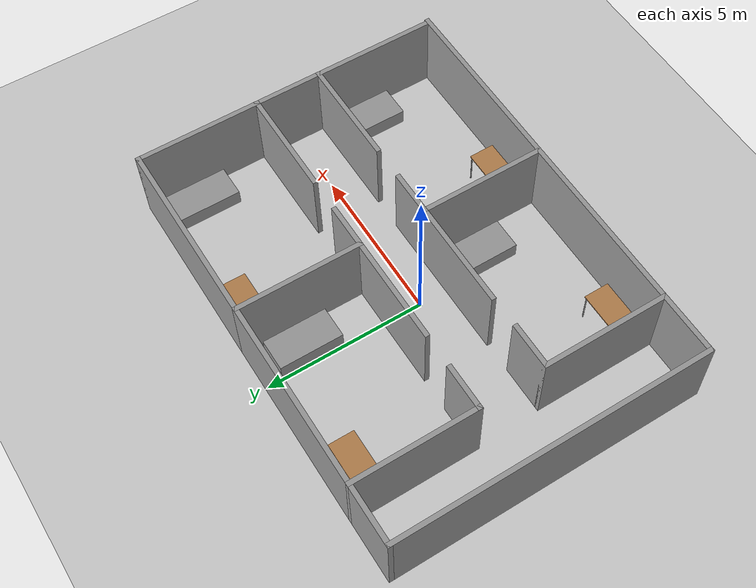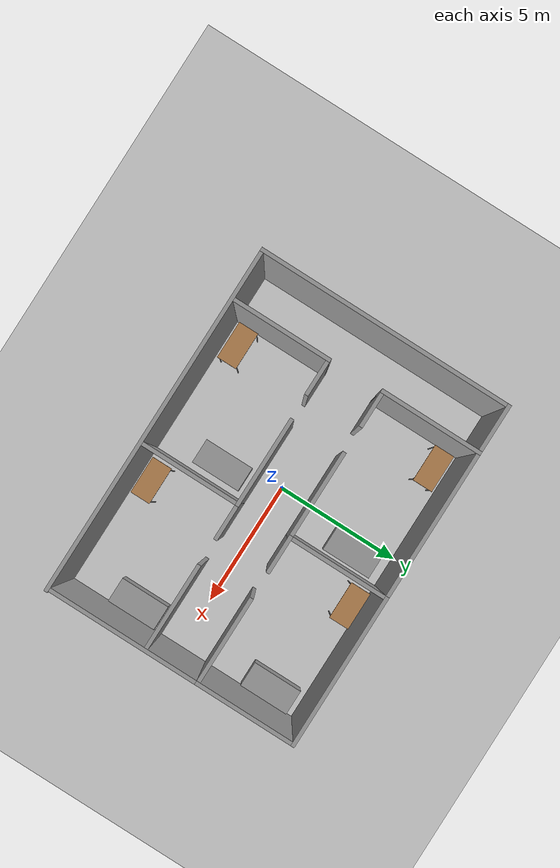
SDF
<sdf version="1.7">
 <world name="default">
  <light name="sun" type="directional">
   <pose>0 0 10 0 -0 0</pose>
   <diffuse>0.8 0.8 0.8 1</diffuse>
   <specular>0.2 0.2 0.2 1</specular>
   <attenuation>
    <range>1000</range>
    <constant>0.9</constant>
    <linear>0.01</linear>
    <quadratic>0.001</quadratic>
   </attenuation>
   <direction>-0.5 0.1 -0.9</direction>
   <spot><inner_angle>0</inner_angle><outer_angle>0</outer_angle><falloff>0</falloff></spot>
  </light>
  <model name="ground_plane">
   <static>1</static>
   <link name="link">
    <collision name="collision">
     <geometry><plane><normal>0 0 1</normal><size>100 100</size></plane></geometry>
     <surface>
      <contact><collide_bitmask>65535</collide_bitmask></contact>
      <friction><ode><mu>100</mu><mu2>50</mu2></ode></friction>
     </surface>
    </collision>
    <visual name="visual">
     <cast_shadows>0</cast_shadows>
     <geometry><plane><normal>0 0 1</normal><size>100 100</size></plane></geometry>
     <material>
      <script><uri>file://media/materials/scripts/gazebo.material</uri><name>Gazebo/Grey</name></script>
     </material>
    </visual>
   </link>
  </model>
  <gravity>0 0 -9.8</gravity>
  <magnetic_field>6e-06 2.3e-05 -4.2e-05</magnetic_field>
  <atmosphere type="adiabatic"/>
  <physics type="ode">
   <max_step_size>0.001</max_step_size>
   <real_time_factor>1</real_time_factor>
   <real_time_update_rate>1000</real_time_update_rate>
  </physics>
  <scene><ambient>0.4 0.4 0.4 1</ambient><background>0.7 0.7 0.7 1</background><shadows>1</shadows></scene>
  <spherical_coordinates>
   <surface_model>EARTH_WGS84</surface_model>
   <latitude_deg>0</latitude_deg>
   <longitude_deg>0</longitude_deg>
   <elevation>0</elevation>
   <heading_deg>0</heading_deg>
  </spherical_coordinates>
  <model name="wall">
   <link name="Wall_0">
    <pose>-4.95 2.6525 0 0 0 -1.5708</pose>
    <visual name="Wall_0_Visual">
     <pose>0 0 1.25 0 -0 0</pose>
     <geometry><box><size>4 0.15 2.5</size></box></geometry>
     <material>
      <script><uri>file://media/materials/scripts/gazebo.material</uri><name>Gazebo/Grey</name></script>
      <ambient>1 1 1 1</ambient>
      <shader type="pixel"/>
     </material>
     <meta><layer>0</layer></meta>
    </visual>
    <collision name="Wall_0_Collision">
     <pose>0 0 1.25 0 -0 0</pose>
     <geometry><box><size>4 0.15 2.5</size></box></geometry>
     <surface>
      <friction>
       <ode><mu>1</mu><mu2>1</mu2><fdir1>0 0 0</fdir1><slip1>0</slip1><slip2>0</slip2></ode>
       <torsional>
        <coefficient>1</coefficient>
        <patch_radius>0</patch_radius>
        <surface_radius>0</surface_radius>
        <use_patch_radius>1</use_patch_radius>
        <ode><slip>0</slip></ode>
       </torsional>
      </friction>
      <bounce><restitution_coefficient>0</restitution_coefficient><threshold>1e+06</threshold></bounce>
      <contact>
       <collide_without_contact>0</collide_without_contact>
       <collide_without_contact_bitmask>1</collide_without_contact_bitmask>
       <collide_bitmask>1</collide_bitmask>
       <ode>
        <soft_cfm>0</soft_cfm>
        <soft_erp>0.2</soft_erp>
        <kp>1e+13</kp>
        <kd>1</kd>
        <max_vel>0.01</max_vel>
        <min_depth>0</min_depth>
       </ode>
       <bullet>
        <split_impulse>1</split_impulse>
        <split_impulse_penetration_threshold>-0.01</split_impulse_penetration_threshold>
        <soft_cfm>0</soft_cfm>
        <soft_erp>0.2</soft_erp>
        <kp>1e+13</kp>
        <kd>1</kd>
       </bullet>
      </contact>
     </surface>
    </collision>
   </link>
   <link name="Wall_11">
    <pose>3.825 4.5775 0 0 -0 0</pose>
    <visual name="Wall_11_Visual">
     <pose>0 0 1.25 0 -0 0</pose>
     <geometry><box><size>6 0.15 2.5</size></box></geometry>
     <material>
      <script><uri>file://media/materials/scripts/gazebo.material</uri><name>Gazebo/Grey</name></script>
      <ambient>1 1 1 1</ambient>
      <shader type="pixel"/>
     </material>
     <meta><layer>0</layer></meta>
    </visual>
    <collision name="Wall_11_Collision">
     <pose>0 0 1.25 0 -0 0</pose>
     <geometry><box><size>6 0.15 2.5</size></box></geometry>
     <surface>
      <friction>
       <ode><mu>1</mu><mu2>1</mu2><fdir1>0 0 0</fdir1><slip1>0</slip1><slip2>0</slip2></ode>
       <torsional>
        <coefficient>1</coefficient>
        <patch_radius>0</patch_radius>
        <surface_radius>0</surface_radius>
        <use_patch_radius>1</use_patch_radius>
        <ode><slip>0</slip></ode>
       </torsional>
      </friction>
      <bounce><restitution_coefficient>0</restitution_coefficient><threshold>1e+06</threshold></bounce>
      <contact>
       <collide_without_contact>0</collide_without_contact>
       <collide_without_contact_bitmask>1</collide_without_contact_bitmask>
       <collide_bitmask>1</collide_bitmask>
       <ode>
        <soft_cfm>0</soft_cfm>
        <soft_erp>0.2</soft_erp>
        <kp>1e+13</kp>
        <kd>1</kd>
        <max_vel>0.01</max_vel>
        <min_depth>0</min_depth>
       </ode>
       <bullet>
        <split_impulse>1</split_impulse>
        <split_impulse_penetration_threshold>-0.01</split_impulse_penetration_threshold>
        <soft_cfm>0</soft_cfm>
        <soft_erp>0.2</soft_erp>
        <kp>1e+13</kp>
        <kd>1</kd>
       </bullet>
      </contact>
     </surface>
    </collision>
   </link>
   <link name="Wall_13">
    <pose>6.75 2.6525 0 0 0 -1.5708</pose>
    <visual name="Wall_13_Visual">
     <pose>0 0 1.25 0 -0 0</pose>
     <geometry><box><size>4 0.15 2.5</size></box></geometry>
     <material>
      <script><uri>file://media/materials/scripts/gazebo.material</uri><name>Gazebo/Grey</name></script>
      <ambient>1 1 1 1</ambient>
      <shader type="pixel"/>
     </material>
     <meta><layer>0</layer></meta>
    </visual>
    <collision name="Wall_13_Collision">
     <pose>0 0 1.25 0 -0 0</pose>
     <geometry><box><size>4 0.15 2.5</size></box></geometry>
     <surface>
      <friction>
       <ode><mu>1</mu><mu2>1</mu2><fdir1>0 0 0</fdir1><slip1>0</slip1><slip2>0</slip2></ode>
       <torsional>
        <coefficient>1</coefficient>
        <patch_radius>0</patch_radius>
        <surface_radius>0</surface_radius>
        <use_patch_radius>1</use_patch_radius>
        <ode><slip>0</slip></ode>
       </torsional>
      </friction>
      <bounce><restitution_coefficient>0</restitution_coefficient><threshold>1e+06</threshold></bounce>
      <contact>
       <collide_without_contact>0</collide_without_contact>
       <collide_without_contact_bitmask>1</collide_without_contact_bitmask>
       <collide_bitmask>1</collide_bitmask>
       <ode>
        <soft_cfm>0</soft_cfm>
        <soft_erp>0.2</soft_erp>
        <kp>1e+13</kp>
        <kd>1</kd>
        <max_vel>0.01</max_vel>
        <min_depth>0</min_depth>
       </ode>
       <bullet>
        <split_impulse>1</split_impulse>
        <split_impulse_penetration_threshold>-0.01</split_impulse_penetration_threshold>
        <soft_cfm>0</soft_cfm>
        <soft_erp>0.2</soft_erp>
        <kp>1e+13</kp>
        <kd>1</kd>
       </bullet>
      </contact>
     </surface>
    </collision>
   </link>
   <link name="Wall_15">
    <pose>1.575 0.7275 0 0 -0 0</pose>
    <visual name="Wall_15_Visual">
     <pose>0 0 1.25 0 -0 0</pose>
     <geometry><box><size>1.5 0.15 2.5</size></box></geometry>
     <material>
      <script><uri>file://media/materials/scripts/gazebo.material</uri><name>Gazebo/Grey</name></script>
      <ambient>1 1 1 1</ambient>
      <shader type="pixel"/>
     </material>
     <meta><layer>0</layer></meta>
    </visual>
    <collision name="Wall_15_Collision">
     <pose>0 0 1.25 0 -0 0</pose>
     <geometry><box><size>1.5 0.15 2.5</size></box></geometry>
     <surface>
      <friction>
       <ode><mu>1</mu><mu2>1</mu2><fdir1>0 0 0</fdir1><slip1>0</slip1><slip2>0</slip2></ode>
       <torsional>
        <coefficient>1</coefficient>
        <patch_radius>0</patch_radius>
        <surface_radius>0</surface_radius>
        <use_patch_radius>1</use_patch_radius>
        <ode><slip>0</slip></ode>
       </torsional>
      </friction>
      <bounce><restitution_coefficient>0</restitution_coefficient><threshold>1e+06</threshold></bounce>
      <contact>
       <collide_without_contact>0</collide_without_contact>
       <collide_without_contact_bitmask>1</collide_without_contact_bitmask>
       <collide_bitmask>1</collide_bitmask>
       <ode>
        <soft_cfm>0</soft_cfm>
        <soft_erp>0.2</soft_erp>
        <kp>1e+13</kp>
        <kd>1</kd>
        <max_vel>0.01</max_vel>
        <min_depth>0</min_depth>
       </ode>
       <bullet>
        <split_impulse>1</split_impulse>
        <split_impulse_penetration_threshold>-0.01</split_impulse_penetration_threshold>
        <soft_cfm>0</soft_cfm>
        <soft_erp>0.2</soft_erp>
        <kp>1e+13</kp>
        <kd>1</kd>
       </bullet>
      </contact>
     </surface>
    </collision>
   </link>
   <link name="Wall_17">
    <pose>5.075 0.7275 0 0 -0 3.14159</pose>
    <visual name="Wall_17_Visual">
     <pose>0 0 1.25 0 -0 0</pose>
     <geometry><box><size>3.5 0.15 2.5</size></box></geometry>
     <material>
      <script><uri>file://media/materials/scripts/gazebo.material</uri><name>Gazebo/Grey</name></script>
      <ambient>1 1 1 1</ambient>
      <shader type="pixel"/>
     </material>
     <meta><layer>0</layer></meta>
    </visual>
    <collision name="Wall_17_Collision">
     <pose>0 0 1.25 0 -0 0</pose>
     <geometry><box><size>3.5 0.15 2.5</size></box></geometry>
     <surface>
      <friction>
       <ode><mu>1</mu><mu2>1</mu2><fdir1>0 0 0</fdir1><slip1>0</slip1><slip2>0</slip2></ode>
       <torsional>
        <coefficient>1</coefficient>
        <patch_radius>0</patch_radius>
        <surface_radius>0</surface_radius>
        <use_patch_radius>1</use_patch_radius>
        <ode><slip>0</slip></ode>
       </torsional>
      </friction>
      <bounce><restitution_coefficient>0</restitution_coefficient><threshold>1e+06</threshold></bounce>
      <contact>
       <collide_without_contact>0</collide_without_contact>
       <collide_without_contact_bitmask>1</collide_without_contact_bitmask>
       <collide_bitmask>1</collide_bitmask>
       <ode>
        <soft_cfm>0</soft_cfm>
        <soft_erp>0.2</soft_erp>
        <kp>1e+13</kp>
        <kd>1</kd>
        <max_vel>0.01</max_vel>
        <min_depth>0</min_depth>
       </ode>
       <bullet>
        <split_impulse>1</split_impulse>
        <split_impulse_penetration_threshold>-0.01</split_impulse_penetration_threshold>
        <soft_cfm>0</soft_cfm>
        <soft_erp>0.2</soft_erp>
        <kp>1e+13</kp>
        <kd>1</kd>
       </bullet>
      </contact>
     </surface>
    </collision>
   </link>
   <link name="Wall_19">
    <pose>-5.875 4.5775 0 0 -0 3.14159</pose>
    <visual name="Wall_19_Visual">
     <pose>0 0 1.25 0 -0 0</pose>
     <geometry><box><size>2 0.15 2.5</size></box></geometry>
     <material>
      <script><uri>file://media/materials/scripts/gazebo.material</uri><name>Gazebo/Grey</name></script>
      <ambient>1 1 1 1</ambient>
      <shader type="pixel"/>
     </material>
     <meta><layer>0</layer></meta>
    </visual>
    <collision name="Wall_19_Collision">
     <pose>0 0 1.25 0 -0 0</pose>
     <geometry><box><size>2 0.15 2.5</size></box></geometry>
     <surface>
      <friction>
       <ode><mu>1</mu><mu2>1</mu2><fdir1>0 0 0</fdir1><slip1>0</slip1><slip2>0</slip2></ode>
       <torsional>
        <coefficient>1</coefficient>
        <patch_radius>0</patch_radius>
        <surface_radius>0</surface_radius>
        <use_patch_radius>1</use_patch_radius>
        <ode><slip>0</slip></ode>
       </torsional>
      </friction>
      <bounce><restitution_coefficient>0</restitution_coefficient><threshold>1e+06</threshold></bounce>
      <contact>
       <collide_without_contact>0</collide_without_contact>
       <collide_without_contact_bitmask>1</collide_without_contact_bitmask>
       <collide_bitmask>1</collide_bitmask>
       <ode>
        <soft_cfm>0</soft_cfm>
        <soft_erp>0.2</soft_erp>
        <kp>1e+13</kp>
        <kd>1</kd>
        <max_vel>0.01</max_vel>
        <min_depth>0</min_depth>
       </ode>
       <bullet>
        <split_impulse>1</split_impulse>
        <split_impulse_penetration_threshold>-0.01</split_impulse_penetration_threshold>
        <soft_cfm>0</soft_cfm>
        <soft_erp>0.2</soft_erp>
        <kp>1e+13</kp>
        <kd>1</kd>
       </bullet>
      </contact>
     </surface>
    </collision>
   </link>
   <link name="Wall_2">
    <pose>-2.025 4.5775 0 0 -0 0</pose>
    <visual name="Wall_2_Visual">
     <pose>0 0 1.25 0 -0 0</pose>
     <geometry><box><size>6 0.15 2.5</size></box></geometry>
     <material>
      <script><uri>file://media/materials/scripts/gazebo.material</uri><name>Gazebo/Grey</name></script>
      <ambient>1 1 1 1</ambient>
      <shader type="pixel"/>
     </material>
     <meta><layer>0</layer></meta>
    </visual>
    <collision name="Wall_2_Collision">
     <pose>0 0 1.25 0 -0 0</pose>
     <geometry><box><size>6 0.15 2.5</size></box></geometry>
     <surface>
      <friction>
       <ode><mu>1</mu><mu2>1</mu2><fdir1>0 0 0</fdir1><slip1>0</slip1><slip2>0</slip2></ode>
       <torsional>
        <coefficient>1</coefficient>
        <patch_radius>0</patch_radius>
        <surface_radius>0</surface_radius>
        <use_patch_radius>1</use_patch_radius>
        <ode><slip>0</slip></ode>
       </torsional>
      </friction>
      <bounce><restitution_coefficient>0</restitution_coefficient><threshold>1e+06</threshold></bounce>
      <contact>
       <collide_without_contact>0</collide_without_contact>
       <collide_without_contact_bitmask>1</collide_without_contact_bitmask>
       <collide_bitmask>1</collide_bitmask>
       <ode>
        <soft_cfm>0</soft_cfm>
        <soft_erp>0.2</soft_erp>
        <kp>1e+13</kp>
        <kd>1</kd>
        <max_vel>0.01</max_vel>
        <min_depth>0</min_depth>
       </ode>
       <bullet>
        <split_impulse>1</split_impulse>
        <split_impulse_penetration_threshold>-0.01</split_impulse_penetration_threshold>
        <soft_cfm>0</soft_cfm>
        <soft_erp>0.2</soft_erp>
        <kp>1e+13</kp>
        <kd>1</kd>
       </bullet>
      </contact>
     </surface>
    </collision>
   </link>
   <link name="Wall_20">
    <pose>-6.8 -0.3475 0 0 0 -1.5708</pose>
    <visual name="Wall_20_Visual">
     <pose>0 0 1.25 0 -0 0</pose>
     <geometry><box><size>10 0.15 2.5</size></box></geometry>
     <material>
      <script><uri>file://media/materials/scripts/gazebo.material</uri><name>Gazebo/Grey</name></script>
      <ambient>1 1 1 1</ambient>
      <shader type="pixel"/>
     </material>
     <meta><layer>0</layer></meta>
    </visual>
    <collision name="Wall_20_Collision">
     <pose>0 0 1.25 0 -0 0</pose>
     <geometry><box><size>10 0.15 2.5</size></box></geometry>
     <surface>
      <friction>
       <ode><mu>1</mu><mu2>1</mu2><fdir1>0 0 0</fdir1><slip1>0</slip1><slip2>0</slip2></ode>
       <torsional>
        <coefficient>1</coefficient>
        <patch_radius>0</patch_radius>
        <surface_radius>0</surface_radius>
        <use_patch_radius>1</use_patch_radius>
        <ode><slip>0</slip></ode>
       </torsional>
      </friction>
      <bounce><restitution_coefficient>0</restitution_coefficient><threshold>1e+06</threshold></bounce>
      <contact>
       <collide_without_contact>0</collide_without_contact>
       <collide_without_contact_bitmask>1</collide_without_contact_bitmask>
       <collide_bitmask>1</collide_bitmask>
       <ode>
        <soft_cfm>0</soft_cfm>
        <soft_erp>0.2</soft_erp>
        <kp>1e+13</kp>
        <kd>1</kd>
        <max_vel>0.01</max_vel>
        <min_depth>0</min_depth>
       </ode>
       <bullet>
        <split_impulse>1</split_impulse>
        <split_impulse_penetration_threshold>-0.01</split_impulse_penetration_threshold>
        <soft_cfm>0</soft_cfm>
        <soft_erp>0.2</soft_erp>
        <kp>1e+13</kp>
        <kd>1</kd>
       </bullet>
      </contact>
     </surface>
    </collision>
   </link>
   <link name="Wall_22">
    <pose>0 -5.2725 0 0 -0 0</pose>
    <visual name="Wall_22_Visual">
     <pose>0 0 1.25 0 -0 0</pose>
     <geometry><box><size>13.75 0.15 2.5</size></box></geometry>
     <material>
      <script><uri>file://media/materials/scripts/gazebo.material</uri><name>Gazebo/Grey</name></script>
      <ambient>1 1 1 1</ambient>
      <shader type="pixel"/>
     </material>
     <meta><layer>0</layer></meta>
    </visual>
    <collision name="Wall_22_Collision">
     <pose>0 0 1.25 0 -0 0</pose>
     <geometry><box><size>13.75 0.15 2.5</size></box></geometry>
     <surface>
      <friction>
       <ode><mu>1</mu><mu2>1</mu2><fdir1>0 0 0</fdir1><slip1>0</slip1><slip2>0</slip2></ode>
       <torsional>
        <coefficient>1</coefficient>
        <patch_radius>0</patch_radius>
        <surface_radius>0</surface_radius>
        <use_patch_radius>1</use_patch_radius>
        <ode><slip>0</slip></ode>
       </torsional>
      </friction>
      <bounce><restitution_coefficient>0</restitution_coefficient><threshold>1e+06</threshold></bounce>
      <contact>
       <collide_without_contact>0</collide_without_contact>
       <collide_without_contact_bitmask>1</collide_without_contact_bitmask>
       <collide_bitmask>1</collide_bitmask>
       <ode>
        <soft_cfm>0</soft_cfm>
        <soft_erp>0.2</soft_erp>
        <kp>1e+13</kp>
        <kd>1</kd>
        <max_vel>0.01</max_vel>
        <min_depth>0</min_depth>
       </ode>
       <bullet>
        <split_impulse>1</split_impulse>
        <split_impulse_penetration_threshold>-0.01</split_impulse_penetration_threshold>
        <soft_cfm>0</soft_cfm>
        <soft_erp>0.2</soft_erp>
        <kp>1e+13</kp>
        <kd>1</kd>
       </bullet>
      </contact>
     </surface>
    </collision>
   </link>
   <link name="Wall_24">
    <pose>6.75 -2.1975 0 0 0 -1.5708</pose>
    <visual name="Wall_24_Visual">
     <pose>0 0 1.25 0 -0 0</pose>
     <geometry><box><size>6 0.15 2.5</size></box></geometry>
     <material>
      <script><uri>file://media/materials/scripts/gazebo.material</uri><name>Gazebo/Grey</name></script>
      <ambient>1 1 1 1</ambient>
      <shader type="pixel"/>
     </material>
     <meta><layer>0</layer></meta>
    </visual>
    <collision name="Wall_24_Collision">
     <pose>0 0 1.25 0 -0 0</pose>
     <geometry><box><size>6 0.15 2.5</size></box></geometry>
     <surface>
      <friction>
       <ode><mu>1</mu><mu2>1</mu2><fdir1>0 0 0</fdir1><slip1>0</slip1><slip2>0</slip2></ode>
       <torsional>
        <coefficient>1</coefficient>
        <patch_radius>0</patch_radius>
        <surface_radius>0</surface_radius>
        <use_patch_radius>1</use_patch_radius>
        <ode><slip>0</slip></ode>
       </torsional>
      </friction>
      <bounce><restitution_coefficient>0</restitution_coefficient><threshold>1e+06</threshold></bounce>
      <contact>
       <collide_without_contact>0</collide_without_contact>
       <collide_without_contact_bitmask>1</collide_without_contact_bitmask>
       <collide_bitmask>1</collide_bitmask>
       <ode>
        <soft_cfm>0</soft_cfm>
        <soft_erp>0.2</soft_erp>
        <kp>1e+13</kp>
        <kd>1</kd>
        <max_vel>0.01</max_vel>
        <min_depth>0</min_depth>
       </ode>
       <bullet>
        <split_impulse>1</split_impulse>
        <split_impulse_penetration_threshold>-0.01</split_impulse_penetration_threshold>
        <soft_cfm>0</soft_cfm>
        <soft_erp>0.2</soft_erp>
        <kp>1e+13</kp>
        <kd>1</kd>
       </bullet>
      </contact>
     </surface>
    </collision>
   </link>
   <link name="Wall_3">
    <pose>0.9 2.6525 0 0 0 -1.5708</pose>
    <visual name="Wall_3_Visual">
     <pose>0 0 1.25 0 -0 0</pose>
     <geometry><box><size>4 0.15 2.5</size></box></geometry>
     <material>
      <script><uri>file://media/materials/scripts/gazebo.material</uri><name>Gazebo/Grey</name></script>
      <ambient>1 1 1 1</ambient>
      <shader type="pixel"/>
     </material>
     <meta><layer>0</layer></meta>
    </visual>
    <collision name="Wall_3_Collision">
     <pose>0 0 1.25 0 -0 0</pose>
     <geometry><box><size>4 0.15 2.5</size></box></geometry>
     <surface>
      <friction>
       <ode><mu>1</mu><mu2>1</mu2><fdir1>0 0 0</fdir1><slip1>0</slip1><slip2>0</slip2></ode>
       <torsional>
        <coefficient>1</coefficient>
        <patch_radius>0</patch_radius>
        <surface_radius>0</surface_radius>
        <use_patch_radius>1</use_patch_radius>
        <ode><slip>0</slip></ode>
       </torsional>
      </friction>
      <bounce><restitution_coefficient>0</restitution_coefficient><threshold>1e+06</threshold></bounce>
      <contact>
       <collide_without_contact>0</collide_without_contact>
       <collide_without_contact_bitmask>1</collide_without_contact_bitmask>
       <collide_bitmask>1</collide_bitmask>
       <ode>
        <soft_cfm>0</soft_cfm>
        <soft_erp>0.2</soft_erp>
        <kp>1e+13</kp>
        <kd>1</kd>
        <max_vel>0.01</max_vel>
        <min_depth>0</min_depth>
       </ode>
       <bullet>
        <split_impulse>1</split_impulse>
        <split_impulse_penetration_threshold>-0.01</split_impulse_penetration_threshold>
        <soft_cfm>0</soft_cfm>
        <soft_erp>0.2</soft_erp>
        <kp>1e+13</kp>
        <kd>1</kd>
       </bullet>
      </contact>
     </surface>
    </collision>
   </link>
   <link name="Wall_30">
    <pose>-4.87397 -3.32744 0 0 -0 1.5708</pose>
    <visual name="Wall_30_Visual">
     <pose>0 0 1.25 0 -0 0</pose>
     <geometry><box><size>4 0.15 2.5</size></box></geometry>
     <material>
      <script><uri>file://media/materials/scripts/gazebo.material</uri><name>Gazebo/Grey</name></script>
      <ambient>1 1 1 1</ambient>
      <shader type="pixel"/>
     </material>
     <meta><layer>0</layer></meta>
    </visual>
    <collision name="Wall_30_Collision">
     <pose>0 0 1.25 0 -0 0</pose>
     <geometry><box><size>4 0.15 2.5</size></box></geometry>
     <surface>
      <friction>
       <ode><mu>1</mu><mu2>1</mu2><fdir1>0 0 0</fdir1><slip1>0</slip1><slip2>0</slip2></ode>
       <torsional>
        <coefficient>1</coefficient>
        <patch_radius>0</patch_radius>
        <surface_radius>0</surface_radius>
        <use_patch_radius>1</use_patch_radius>
        <ode><slip>0</slip></ode>
       </torsional>
      </friction>
      <bounce><restitution_coefficient>0</restitution_coefficient><threshold>1e+06</threshold></bounce>
      <contact>
       <collide_without_contact>0</collide_without_contact>
       <collide_without_contact_bitmask>1</collide_without_contact_bitmask>
       <collide_bitmask>1</collide_bitmask>
       <ode>
        <soft_cfm>0</soft_cfm>
        <soft_erp>0.2</soft_erp>
        <kp>1e+13</kp>
        <kd>1</kd>
        <max_vel>0.01</max_vel>
        <min_depth>0</min_depth>
       </ode>
       <bullet>
        <split_impulse>1</split_impulse>
        <split_impulse_penetration_threshold>-0.01</split_impulse_penetration_threshold>
        <soft_cfm>0</soft_cfm>
        <soft_erp>0.2</soft_erp>
        <kp>1e+13</kp>
        <kd>1</kd>
       </bullet>
      </contact>
     </surface>
    </collision>
   </link>
   <link name="Wall_32">
    <pose>-4.19897 -1.40244 0 0 -0 0</pose>
    <visual name="Wall_32_Visual">
     <pose>0 0 1.25 0 -0 0</pose>
     <geometry><box><size>1.5 0.15 2.5</size></box></geometry>
     <material>
      <script><uri>file://media/materials/scripts/gazebo.material</uri><name>Gazebo/Grey</name></script>
      <ambient>1 1 1 1</ambient>
      <shader type="pixel"/>
     </material>
     <meta><layer>0</layer></meta>
    </visual>
    <collision name="Wall_32_Collision">
     <pose>0 0 1.25 0 -0 0</pose>
     <geometry><box><size>1.5 0.15 2.5</size></box></geometry>
     <surface>
      <friction>
       <ode><mu>1</mu><mu2>1</mu2><fdir1>0 0 0</fdir1><slip1>0</slip1><slip2>0</slip2></ode>
       <torsional>
        <coefficient>1</coefficient>
        <patch_radius>0</patch_radius>
        <surface_radius>0</surface_radius>
        <use_patch_radius>1</use_patch_radius>
        <ode><slip>0</slip></ode>
       </torsional>
      </friction>
      <bounce><restitution_coefficient>0</restitution_coefficient><threshold>1e+06</threshold></bounce>
      <contact>
       <collide_without_contact>0</collide_without_contact>
       <collide_without_contact_bitmask>1</collide_without_contact_bitmask>
       <collide_bitmask>1</collide_bitmask>
       <ode>
        <soft_cfm>0</soft_cfm>
        <soft_erp>0.2</soft_erp>
        <kp>1e+13</kp>
        <kd>1</kd>
        <max_vel>0.01</max_vel>
        <min_depth>0</min_depth>
       </ode>
       <bullet>
        <split_impulse>1</split_impulse>
        <split_impulse_penetration_threshold>-0.01</split_impulse_penetration_threshold>
        <soft_cfm>0</soft_cfm>
        <soft_erp>0.2</soft_erp>
        <kp>1e+13</kp>
        <kd>1</kd>
       </bullet>
      </contact>
     </surface>
    </collision>
   </link>
   <link name="Wall_42">
    <pose>-0.775 -1.3725 0 0 -0 0</pose>
    <visual name="Wall_42_Visual">
     <pose>0 0 1.25 0 -0 0</pose>
     <geometry><box><size>3.5 0.15 2.5</size></box></geometry>
     <material>
      <script><uri>file://media/materials/scripts/gazebo.material</uri><name>Gazebo/Grey</name></script>
      <ambient>1 1 1 1</ambient>
      <shader type="pixel"/>
     </material>
     <meta><layer>0</layer></meta>
    </visual>
    <collision name="Wall_42_Collision">
     <pose>0 0 1.25 0 -0 0</pose>
     <geometry><box><size>3.5 0.15 2.5</size></box></geometry>
     <surface>
      <friction>
       <ode><mu>1</mu><mu2>1</mu2><fdir1>0 0 0</fdir1><slip1>0</slip1><slip2>0</slip2></ode>
       <torsional>
        <coefficient>1</coefficient>
        <patch_radius>0</patch_radius>
        <surface_radius>0</surface_radius>
        <use_patch_radius>1</use_patch_radius>
        <ode><slip>0</slip></ode>
       </torsional>
      </friction>
      <bounce><restitution_coefficient>0</restitution_coefficient><threshold>1e+06</threshold></bounce>
      <contact>
       <collide_without_contact>0</collide_without_contact>
       <collide_without_contact_bitmask>1</collide_without_contact_bitmask>
       <collide_bitmask>1</collide_bitmask>
       <ode>
        <soft_cfm>0</soft_cfm>
        <soft_erp>0.2</soft_erp>
        <kp>1e+13</kp>
        <kd>1</kd>
        <max_vel>0.01</max_vel>
        <min_depth>0</min_depth>
       </ode>
       <bullet>
        <split_impulse>1</split_impulse>
        <split_impulse_penetration_threshold>-0.01</split_impulse_penetration_threshold>
        <soft_cfm>0</soft_cfm>
        <soft_erp>0.2</soft_erp>
        <kp>1e+13</kp>
        <kd>1</kd>
       </bullet>
      </contact>
     </surface>
    </collision>
   </link>
   <link name="Wall_43">
    <pose>1.575 -1.3725 0 0 -0 0</pose>
    <visual name="Wall_43_Visual">
     <pose>0 0 1.25 0 -0 0</pose>
     <geometry><box><size>1.5 0.15 2.5</size></box></geometry>
     <material>
      <script><uri>file://media/materials/scripts/gazebo.material</uri><name>Gazebo/Grey</name></script>
      <ambient>1 1 1 1</ambient>
      <shader type="pixel"/>
     </material>
     <meta><layer>0</layer></meta>
    </visual>
    <collision name="Wall_43_Collision">
     <pose>0 0 1.25 0 -0 0</pose>
     <geometry><box><size>1.5 0.15 2.5</size></box></geometry>
     <surface>
      <friction>
       <ode><mu>1</mu><mu2>1</mu2><fdir1>0 0 0</fdir1><slip1>0</slip1><slip2>0</slip2></ode>
       <torsional>
        <coefficient>1</coefficient>
        <patch_radius>0</patch_radius>
        <surface_radius>0</surface_radius>
        <use_patch_radius>1</use_patch_radius>
        <ode><slip>0</slip></ode>
       </torsional>
      </friction>
      <bounce><restitution_coefficient>0</restitution_coefficient><threshold>1e+06</threshold></bounce>
      <contact>
       <collide_without_contact>0</collide_without_contact>
       <collide_without_contact_bitmask>1</collide_without_contact_bitmask>
       <collide_bitmask>1</collide_bitmask>
       <ode>
        <soft_cfm>0</soft_cfm>
        <soft_erp>0.2</soft_erp>
        <kp>1e+13</kp>
        <kd>1</kd>
        <max_vel>0.01</max_vel>
        <min_depth>0</min_depth>
       </ode>
       <bullet>
        <split_impulse>1</split_impulse>
        <split_impulse_penetration_threshold>-0.01</split_impulse_penetration_threshold>
        <soft_cfm>0</soft_cfm>
        <soft_erp>0.2</soft_erp>
        <kp>1e+13</kp>
        <kd>1</kd>
       </bullet>
      </contact>
     </surface>
    </collision>
   </link>
   <link name="Wall_46">
    <pose>5.075 -1.3725 0 0 -0 0</pose>
    <visual name="Wall_46_Visual">
     <pose>0 0 1.25 0 -0 0</pose>
     <geometry><box><size>3.5 0.15 2.5</size></box></geometry>
     <material>
      <script><uri>file://media/materials/scripts/gazebo.material</uri><name>Gazebo/Grey</name></script>
      <ambient>1 1 1 1</ambient>
      <shader type="pixel"/>
     </material>
     <meta><layer>0</layer></meta>
    </visual>
    <collision name="Wall_46_Collision">
     <pose>0 0 1.25 0 -0 0</pose>
     <geometry><box><size>3.5 0.15 2.5</size></box></geometry>
     <surface>
      <friction>
       <ode><mu>1</mu><mu2>1</mu2><fdir1>0 0 0</fdir1><slip1>0</slip1><slip2>0</slip2></ode>
       <torsional>
        <coefficient>1</coefficient>
        <patch_radius>0</patch_radius>
        <surface_radius>0</surface_radius>
        <use_patch_radius>1</use_patch_radius>
        <ode><slip>0</slip></ode>
       </torsional>
      </friction>
      <bounce><restitution_coefficient>0</restitution_coefficient><threshold>1e+06</threshold></bounce>
      <contact>
       <collide_without_contact>0</collide_without_contact>
       <collide_without_contact_bitmask>1</collide_without_contact_bitmask>
       <collide_bitmask>1</collide_bitmask>
       <ode>
        <soft_cfm>0</soft_cfm>
        <soft_erp>0.2</soft_erp>
        <kp>1e+13</kp>
        <kd>1</kd>
        <max_vel>0.01</max_vel>
        <min_depth>0</min_depth>
       </ode>
       <bullet>
        <split_impulse>1</split_impulse>
        <split_impulse_penetration_threshold>-0.01</split_impulse_penetration_threshold>
        <soft_cfm>0</soft_cfm>
        <soft_erp>0.2</soft_erp>
        <kp>1e+13</kp>
        <kd>1</kd>
       </bullet>
      </contact>
     </surface>
    </collision>
   </link>
   <link name="Wall_49">
    <pose>0.9 -3.2975 0 0 0 -1.5708</pose>
    <visual name="Wall_49_Visual">
     <pose>0 0 1.25 0 -0 0</pose>
     <geometry><box><size>4 0.15 2.5</size></box></geometry>
     <material>
      <script><uri>file://media/materials/scripts/gazebo.material</uri><name>Gazebo/Grey</name></script>
      <ambient>1 1 1 1</ambient>
      <shader type="pixel"/>
     </material>
     <meta><layer>0</layer></meta>
    </visual>
    <collision name="Wall_49_Collision">
     <pose>0 0 1.25 0 -0 0</pose>
     <geometry><box><size>4 0.15 2.5</size></box></geometry>
     <surface>
      <friction>
       <ode><mu>1</mu><mu2>1</mu2><fdir1>0 0 0</fdir1><slip1>0</slip1><slip2>0</slip2></ode>
       <torsional>
        <coefficient>1</coefficient>
        <patch_radius>0</patch_radius>
        <surface_radius>0</surface_radius>
        <use_patch_radius>1</use_patch_radius>
        <ode><slip>0</slip></ode>
       </torsional>
      </friction>
      <bounce><restitution_coefficient>0</restitution_coefficient><threshold>1e+06</threshold></bounce>
      <contact>
       <collide_without_contact>0</collide_without_contact>
       <collide_without_contact_bitmask>1</collide_without_contact_bitmask>
       <collide_bitmask>1</collide_bitmask>
       <ode>
        <soft_cfm>0</soft_cfm>
        <soft_erp>0.2</soft_erp>
        <kp>1e+13</kp>
        <kd>1</kd>
        <max_vel>0.01</max_vel>
        <min_depth>0</min_depth>
       </ode>
       <bullet>
        <split_impulse>1</split_impulse>
        <split_impulse_penetration_threshold>-0.01</split_impulse_penetration_threshold>
        <soft_cfm>0</soft_cfm>
        <soft_erp>0.2</soft_erp>
        <kp>1e+13</kp>
        <kd>1</kd>
       </bullet>
      </contact>
     </surface>
    </collision>
   </link>
   <link name="Wall_6">
    <pose>-4.275 0.7275 0 0 -0 0</pose>
    <visual name="Wall_6_Visual">
     <pose>0 0 1.25 0 -0 0</pose>
     <geometry><box><size>1.5 0.15 2.5</size></box></geometry>
     <material>
      <script><uri>file://media/materials/scripts/gazebo.material</uri><name>Gazebo/Grey</name></script>
      <ambient>1 1 1 1</ambient>
      <shader type="pixel"/>
     </material>
     <meta><layer>0</layer></meta>
    </visual>
    <collision name="Wall_6_Collision">
     <pose>0 0 1.25 0 -0 0</pose>
     <geometry><box><size>1.5 0.15 2.5</size></box></geometry>
     <surface>
      <friction>
       <ode><mu>1</mu><mu2>1</mu2><fdir1>0 0 0</fdir1><slip1>0</slip1><slip2>0</slip2></ode>
       <torsional>
        <coefficient>1</coefficient>
        <patch_radius>0</patch_radius>
        <surface_radius>0</surface_radius>
        <use_patch_radius>1</use_patch_radius>
        <ode><slip>0</slip></ode>
       </torsional>
      </friction>
      <bounce><restitution_coefficient>0</restitution_coefficient><threshold>1e+06</threshold></bounce>
      <contact>
       <collide_without_contact>0</collide_without_contact>
       <collide_without_contact_bitmask>1</collide_without_contact_bitmask>
       <collide_bitmask>1</collide_bitmask>
       <ode>
        <soft_cfm>0</soft_cfm>
        <soft_erp>0.2</soft_erp>
        <kp>1e+13</kp>
        <kd>1</kd>
        <max_vel>0.01</max_vel>
        <min_depth>0</min_depth>
       </ode>
       <bullet>
        <split_impulse>1</split_impulse>
        <split_impulse_penetration_threshold>-0.01</split_impulse_penetration_threshold>
        <soft_cfm>0</soft_cfm>
        <soft_erp>0.2</soft_erp>
        <kp>1e+13</kp>
        <kd>1</kd>
       </bullet>
      </contact>
     </surface>
    </collision>
   </link>
   <link name="Wall_8">
    <pose>-0.775 0.7275 0 0 -0 3.14159</pose>
    <visual name="Wall_8_Visual">
     <pose>0 0 1.25 0 -0 0</pose>
     <geometry><box><size>3.5 0.15 2.5</size></box></geometry>
     <material>
      <script><uri>file://media/materials/scripts/gazebo.material</uri><name>Gazebo/Grey</name></script>
      <ambient>1 1 1 1</ambient>
      <shader type="pixel"/>
     </material>
     <meta><layer>0</layer></meta>
    </visual>
    <collision name="Wall_8_Collision">
     <pose>0 0 1.25 0 -0 0</pose>
     <geometry><box><size>3.5 0.15 2.5</size></box></geometry>
     <surface>
      <friction>
       <ode><mu>1</mu><mu2>1</mu2><fdir1>0 0 0</fdir1><slip1>0</slip1><slip2>0</slip2></ode>
       <torsional>
        <coefficient>1</coefficient>
        <patch_radius>0</patch_radius>
        <surface_radius>0</surface_radius>
        <use_patch_radius>1</use_patch_radius>
        <ode><slip>0</slip></ode>
       </torsional>
      </friction>
      <bounce><restitution_coefficient>0</restitution_coefficient><threshold>1e+06</threshold></bounce>
      <contact>
       <collide_without_contact>0</collide_without_contact>
       <collide_without_contact_bitmask>1</collide_without_contact_bitmask>
       <collide_bitmask>1</collide_bitmask>
       <ode>
        <soft_cfm>0</soft_cfm>
        <soft_erp>0.2</soft_erp>
        <kp>1e+13</kp>
        <kd>1</kd>
        <max_vel>0.01</max_vel>
        <min_depth>0</min_depth>
       </ode>
       <bullet>
        <split_impulse>1</split_impulse>
        <split_impulse_penetration_threshold>-0.01</split_impulse_penetration_threshold>
        <soft_cfm>0</soft_cfm>
        <soft_erp>0.2</soft_erp>
        <kp>1e+13</kp>
        <kd>1</kd>
       </bullet>
      </contact>
     </surface>
    </collision>
   </link>
   <static>1</static>
   <pose>0.39067 0.41881 0 0 -0 0</pose>
  </model>
  <model name="howto">
   <model name="table">
    <static>1</static>
    <link name="link">
     <collision name="surface">
      <pose>0 0 1 0 -0 0</pose>
      <geometry><box><size>1.5 0.8 0.03</size></box></geometry>
      <surface><friction><ode><mu>0.6</mu><mu2>0.6</mu2></ode></friction></surface>
     </collision>
     <visual name="visual1">
      <pose>0 0 1 0 -0 0</pose>
      <geometry><box><size>1.5 0.8 0.03</size></box></geometry>
      <material>
       <script><uri>file://media/materials/scripts/gazebo.material</uri><name>Gazebo/Wood</name></script>
      </material>
     </visual>
     <collision name="front_left_leg">
      <pose>0.68 0.38 0.5 0 -0 0</pose>
      <geometry><cylinder><radius>0.02</radius><length>1</length></cylinder></geometry>
     </collision>
     <visual name="front_left_leg">
      <pose>0.68 0.38 0.5 0 -0 0</pose>
      <geometry><cylinder><radius>0.02</radius><length>1</length></cylinder></geometry>
      <material>
       <script><uri>file://media/materials/scripts/gazebo.material</uri><name>Gazebo/Grey</name></script>
      </material>
     </visual>
     <collision name="front_right_leg">
      <pose>0.68 -0.38 0.5 0 -0 0</pose>
      <geometry><cylinder><radius>0.02</radius><length>1</length></cylinder></geometry>
     </collision>
     <visual name="front_right_leg">
      <pose>0.68 -0.38 0.5 0 -0 0</pose>
      <geometry><cylinder><radius>0.02</radius><length>1</length></cylinder></geometry>
      <material>
       <script><uri>file://media/materials/scripts/gazebo.material</uri><name>Gazebo/Grey</name></script>
      </material>
     </visual>
     <collision name="back_right_leg">
      <pose>-0.68 -0.38 0.5 0 -0 0</pose>
      <geometry><cylinder><radius>0.02</radius><length>1</length></cylinder></geometry>
     </collision>
     <visual name="back_right_leg">
      <pose>-0.68 -0.38 0.5 0 -0 0</pose>
      <geometry><cylinder><radius>0.02</radius><length>1</length></cylinder></geometry>
      <material>
       <script><uri>file://media/materials/scripts/gazebo.material</uri><name>Gazebo/Grey</name></script>
      </material>
     </visual>
     <collision name="back_left_leg">
      <pose>-0.68 0.38 0.5 0 -0 0</pose>
      <geometry><cylinder><radius>0.02</radius><length>1</length></cylinder></geometry>
     </collision>
     <visual name="back_left_leg">
      <pose>-0.68 0.38 0.5 0 -0 0</pose>
      <geometry><cylinder><radius>0.02</radius><length>1</length></cylinder></geometry>
      <material>
       <script><uri>file://media/materials/scripts/gazebo.material</uri><name>Gazebo/Grey</name></script>
      </material>
     </visual>
    </link>
    <pose>-2.92674 4.15699 0 0 -0 0</pose>
   </model>
   <model name="table_0">
    <static>1</static>
    <link name="link">
     <collision name="surface">
      <pose>0 0 1 0 -0 0</pose>
      <geometry><box><size>1.5 0.8 0.03</size></box></geometry>
      <surface><friction><ode><mu>0.6</mu><mu2>0.6</mu2></ode></friction></surface>
     </collision>
     <visual name="visual1">
      <pose>0 0 1 0 -0 0</pose>
      <geometry><box><size>1.5 0.8 0.03</size></box></geometry>
      <material>
       <script><uri>file://media/materials/scripts/gazebo.material</uri><name>Gazebo/Wood</name></script>
      </material>
     </visual>
     <collision name="front_left_leg">
      <pose>0.68 0.38 0.5 0 -0 0</pose>
      <geometry><cylinder><radius>0.02</radius><length>1</length></cylinder></geometry>
     </collision>
     <visual name="front_left_leg">
      <pose>0.68 0.38 0.5 0 -0 0</pose>
      <geometry><cylinder><radius>0.02</radius><length>1</length></cylinder></geometry>
      <material>
       <script><uri>file://media/materials/scripts/gazebo.material</uri><name>Gazebo/Grey</name></script>
      </material>
     </visual>
     <collision name="front_right_leg">
      <pose>0.68 -0.38 0.5 0 -0 0</pose>
      <geometry><cylinder><radius>0.02</radius><length>1</length></cylinder></geometry>
     </collision>
     <visual name="front_right_leg">
      <pose>0.68 -0.38 0.5 0 -0 0</pose>
      <geometry><cylinder><radius>0.02</radius><length>1</length></cylinder></geometry>
      <material>
       <script><uri>file://media/materials/scripts/gazebo.material</uri><name>Gazebo/Grey</name></script>
      </material>
     </visual>
     <collision name="back_right_leg">
      <pose>-0.68 -0.38 0.5 0 -0 0</pose>
      <geometry><cylinder><radius>0.02</radius><length>1</length></cylinder></geometry>
     </collision>
     <visual name="back_right_leg">
      <pose>-0.68 -0.38 0.5 0 -0 0</pose>
      <geometry><cylinder><radius>0.02</radius><length>1</length></cylinder></geometry>
      <material>
       <script><uri>file://media/materials/scripts/gazebo.material</uri><name>Gazebo/Grey</name></script>
      </material>
     </visual>
     <collision name="back_left_leg">
      <pose>-0.68 0.38 0.5 0 -0 0</pose>
      <geometry><cylinder><radius>0.02</radius><length>1</length></cylinder></geometry>
     </collision>
     <visual name="back_left_leg">
      <pose>-0.68 0.38 0.5 0 -0 0</pose>
      <geometry><cylinder><radius>0.02</radius><length>1</length></cylinder></geometry>
      <material>
       <script><uri>file://media/materials/scripts/gazebo.material</uri><name>Gazebo/Grey</name></script>
      </material>
     </visual>
    </link>
    <pose>2.88845 4.26959 0 0 -0 0</pose>
   </model>
   <model name="table_1">
    <static>1</static>
    <link name="link">
     <collision name="surface">
      <pose>0 0 1 0 -0 0</pose>
      <geometry><box><size>1.5 0.8 0.03</size></box></geometry>
      <surface><friction><ode><mu>0.6</mu><mu2>0.6</mu2></ode></friction></surface>
     </collision>
     <visual name="visual1">
      <pose>0 0 1 0 -0 0</pose>
      <geometry><box><size>1.5 0.8 0.03</size></box></geometry>
      <material>
       <script><uri>file://media/materials/scripts/gazebo.material</uri><name>Gazebo/Wood</name></script>
      </material>
     </visual>
     <collision name="front_left_leg">
      <pose>0.68 0.38 0.5 0 -0 0</pose>
      <geometry><cylinder><radius>0.02</radius><length>1</length></cylinder></geometry>
     </collision>
     <visual name="front_left_leg">
      <pose>0.68 0.38 0.5 0 -0 0</pose>
      <geometry><cylinder><radius>0.02</radius><length>1</length></cylinder></geometry>
      <material>
       <script><uri>file://media/materials/scripts/gazebo.material</uri><name>Gazebo/Grey</name></script>
      </material>
     </visual>
     <collision name="front_right_leg">
      <pose>0.68 -0.38 0.5 0 -0 0</pose>
      <geometry><cylinder><radius>0.02</radius><length>1</length></cylinder></geometry>
     </collision>
     <visual name="front_right_leg">
      <pose>0.68 -0.38 0.5 0 -0 0</pose>
      <geometry><cylinder><radius>0.02</radius><length>1</length></cylinder></geometry>
      <material>
       <script><uri>file://media/materials/scripts/gazebo.material</uri><name>Gazebo/Grey</name></script>
      </material>
     </visual>
     <collision name="back_right_leg">
      <pose>-0.68 -0.38 0.5 0 -0 0</pose>
      <geometry><cylinder><radius>0.02</radius><length>1</length></cylinder></geometry>
     </collision>
     <visual name="back_right_leg">
      <pose>-0.68 -0.38 0.5 0 -0 0</pose>
      <geometry><cylinder><radius>0.02</radius><length>1</length></cylinder></geometry>
      <material>
       <script><uri>file://media/materials/scripts/gazebo.material</uri><name>Gazebo/Grey</name></script>
      </material>
     </visual>
     <collision name="back_left_leg">
      <pose>-0.68 0.38 0.5 0 -0 0</pose>
      <geometry><cylinder><radius>0.02</radius><length>1</length></cylinder></geometry>
     </collision>
     <visual name="back_left_leg">
      <pose>-0.68 0.38 0.5 0 -0 0</pose>
      <geometry><cylinder><radius>0.02</radius><length>1</length></cylinder></geometry>
      <material>
       <script><uri>file://media/materials/scripts/gazebo.material</uri><name>Gazebo/Grey</name></script>
      </material>
     </visual>
    </link>
    <pose>-2.87761 -4.20305 0 0 -0 0</pose>
   </model>
   <model name="table_2">
    <static>1</static>
    <link name="link">
     <collision name="surface">
      <pose>0 0 1 0 -0 0</pose>
      <geometry><box><size>1.5 0.8 0.03</size></box></geometry>
      <surface><friction><ode><mu>0.6</mu><mu2>0.6</mu2></ode></friction></surface>
     </collision>
     <visual name="visual1">
      <pose>0 0 1 0 -0 0</pose>
      <geometry><box><size>1.5 0.8 0.03</size></box></geometry>
      <material>
       <script><uri>file://media/materials/scripts/gazebo.material</uri><name>Gazebo/Wood</name></script>
      </material>
     </visual>
     <collision name="front_left_leg">
      <pose>0.68 0.38 0.5 0 -0 0</pose>
      <geometry><cylinder><radius>0.02</radius><length>1</length></cylinder></geometry>
     </collision>
     <visual name="front_left_leg">
      <pose>0.68 0.38 0.5 0 -0 0</pose>
      <geometry><cylinder><radius>0.02</radius><length>1</length></cylinder></geometry>
      <material>
       <script><uri>file://media/materials/scripts/gazebo.material</uri><name>Gazebo/Grey</name></script>
      </material>
     </visual>
     <collision name="front_right_leg">
      <pose>0.68 -0.38 0.5 0 -0 0</pose>
      <geometry><cylinder><radius>0.02</radius><length>1</length></cylinder></geometry>
     </collision>
     <visual name="front_right_leg">
      <pose>0.68 -0.38 0.5 0 -0 0</pose>
      <geometry><cylinder><radius>0.02</radius><length>1</length></cylinder></geometry>
      <material>
       <script><uri>file://media/materials/scripts/gazebo.material</uri><name>Gazebo/Grey</name></script>
      </material>
     </visual>
     <collision name="back_right_leg">
      <pose>-0.68 -0.38 0.5 0 -0 0</pose>
      <geometry><cylinder><radius>0.02</radius><length>1</length></cylinder></geometry>
     </collision>
     <visual name="back_right_leg">
      <pose>-0.68 -0.38 0.5 0 -0 0</pose>
      <geometry><cylinder><radius>0.02</radius><length>1</length></cylinder></geometry>
      <material>
       <script><uri>file://media/materials/scripts/gazebo.material</uri><name>Gazebo/Grey</name></script>
      </material>
     </visual>
     <collision name="back_left_leg">
      <pose>-0.68 0.38 0.5 0 -0 0</pose>
      <geometry><cylinder><radius>0.02</radius><length>1</length></cylinder></geometry>
     </collision>
     <visual name="back_left_leg">
      <pose>-0.68 0.38 0.5 0 -0 0</pose>
      <geometry><cylinder><radius>0.02</radius><length>1</length></cylinder></geometry>
      <material>
       <script><uri>file://media/materials/scripts/gazebo.material</uri><name>Gazebo/Grey</name></script>
      </material>
     </visual>
    </link>
    <pose>2.91591 -4.22352 0 0 -0 0</pose>
   </model>
   <static>0</static>
   <pose>-0.60767 0.09355 0 0 -0 0</pose>
  </model>
  <model name="Untitled">
   <link name="link_3">
    <inertial>
     <mass>7870</mass>
     <inertia><ixx>2787.29</ixx><ixy>0</ixy><ixz>0</ixz><iyy>819.792</iyy><iyz>0</iyz><izz>3279.17</izz></inertia>
    </inertial>
    <visual name="visual">
     <geometry><box><size>1 2 0.5</size></box></geometry>
     <material>
      <lighting>1</lighting>
      <script><uri>file://media/materials/scripts/gazebo.material</uri><name>Gazebo/Grey</name></script>
      <shader type="pixel"><normal_map>__default__</normal_map></shader>
      <ambient>0.3 0.3 0.3 1</ambient>
      <diffuse>0.7 0.7 0.7 1</diffuse>
      <specular>0.01 0.01 0.01 1</specular>
      <emissive>0 0 0 1</emissive>
     </material>
    </visual>
    <collision name="collision">
     <geometry><box><size>1 2 0.5</size></box></geometry>
     <surface>
      <friction>
       <ode><mu>1</mu><mu2>1</mu2><fdir1>0 0 0</fdir1><slip1>0</slip1><slip2>0</slip2></ode>
       <torsional>
        <coefficient>1</coefficient>
        <patch_radius>0</patch_radius>
        <surface_radius>0</surface_radius>
        <use_patch_radius>1</use_patch_radius>
        <ode><slip>0</slip></ode>
       </torsional>
      </friction>
      <bounce><restitution_coefficient>0</restitution_coefficient><threshold>1e+06</threshold></bounce>
      <contact>
       <collide_without_contact>0</collide_without_contact>
       <collide_without_contact_bitmask>1</collide_without_contact_bitmask>
       <collide_bitmask>1</collide_bitmask>
       <ode>
        <soft_cfm>0</soft_cfm>
        <soft_erp>0.2</soft_erp>
        <kp>1e+13</kp>
        <kd>1</kd>
        <max_vel>0.01</max_vel>
        <min_depth>0</min_depth>
       </ode>
       <bullet>
        <split_impulse>1</split_impulse>
        <split_impulse_penetration_threshold>-0.01</split_impulse_penetration_threshold>
        <soft_cfm>0</soft_cfm>
        <soft_erp>0.2</soft_erp>
        <kp>1e+13</kp>
        <kd>1</kd>
       </bullet>
      </contact>
     </surface>
    </collision>
   </link>
   <static>0</static>
   <pose>0.593664 3.5 0.25 0 -0 0</pose>
  </model>
  <model name="Untitled_clone">
   <link name="link_3">
    <inertial>
     <mass>7870</mass>
     <inertia><ixx>2787.29</ixx><ixy>0</ixy><ixz>0</ixz><iyy>819.792</iyy><iyz>0</iyz><izz>3279.17</izz></inertia>
    </inertial>
    <visual name="visual">
     <geometry><box><size>1 2 0.5</size></box></geometry>
     <material>
      <lighting>1</lighting>
      <script><uri>file://media/materials/scripts/gazebo.material</uri><name>Gazebo/Grey</name></script>
      <shader type="pixel"><normal_map>__default__</normal_map></shader>
      <ambient>0.3 0.3 0.3 1</ambient>
      <diffuse>0.7 0.7 0.7 1</diffuse>
      <specular>0.01 0.01 0.01 1</specular>
      <emissive>0 0 0 1</emissive>
     </material>
    </visual>
    <collision name="collision">
     <geometry><box><size>1 2 0.5</size></box></geometry>
     <surface>
      <friction>
       <ode><mu>1</mu><mu2>1</mu2><fdir1>0 0 0</fdir1><slip1>0</slip1><slip2>0</slip2></ode>
       <torsional>
        <coefficient>1</coefficient>
        <patch_radius>0</patch_radius>
        <surface_radius>0</surface_radius>
        <use_patch_radius>1</use_patch_radius>
        <ode><slip>0</slip></ode>
       </torsional>
      </friction>
      <bounce><restitution_coefficient>0</restitution_coefficient><threshold>1e+06</threshold></bounce>
      <contact>
       <collide_without_contact>0</collide_without_contact>
       <collide_without_contact_bitmask>1</collide_without_contact_bitmask>
       <collide_bitmask>1</collide_bitmask>
       <ode>
        <soft_cfm>0</soft_cfm>
        <soft_erp>0.2</soft_erp>
        <kp>1e+13</kp>
        <kd>1</kd>
        <max_vel>0.01</max_vel>
        <min_depth>0</min_depth>
       </ode>
       <bullet>
        <split_impulse>1</split_impulse>
        <split_impulse_penetration_threshold>-0.01</split_impulse_penetration_threshold>
        <soft_cfm>0</soft_cfm>
        <soft_erp>0.2</soft_erp>
        <kp>1e+13</kp>
        <kd>1</kd>
       </bullet>
      </contact>
     </surface>
    </collision>
   </link>
   <static>0</static>
   <pose>6.47037 3.62465 0.25 0 -0 0</pose>
  </model>
  <model name="Untitled_clone_0">
   <link name="link_3">
    <inertial>
     <mass>7870</mass>
     <inertia><ixx>2787.29</ixx><ixy>0</ixy><ixz>0</ixz><iyy>819.792</iyy><iyz>0</iyz><izz>3279.17</izz></inertia>
    </inertial>
    <visual name="visual">
     <geometry><box><size>1 2 0.5</size></box></geometry>
     <material>
      <lighting>1</lighting>
      <script><uri>file://media/materials/scripts/gazebo.material</uri><name>Gazebo/Grey</name></script>
      <shader type="pixel"><normal_map>__default__</normal_map></shader>
      <ambient>0.3 0.3 0.3 1</ambient>
      <diffuse>0.7 0.7 0.7 1</diffuse>
      <specular>0.01 0.01 0.01 1</specular>
      <emissive>0 0 0 1</emissive>
     </material>
    </visual>
    <collision name="collision">
     <geometry><box><size>1 2 0.5</size></box></geometry>
     <surface>
      <friction>
       <ode><mu>1</mu><mu2>1</mu2><fdir1>0 0 0</fdir1><slip1>0</slip1><slip2>0</slip2></ode>
       <torsional>
        <coefficient>1</coefficient>
        <patch_radius>0</patch_radius>
        <surface_radius>0</surface_radius>
        <use_patch_radius>1</use_patch_radius>
        <ode><slip>0</slip></ode>
       </torsional>
      </friction>
      <bounce><restitution_coefficient>0</restitution_coefficient><threshold>1e+06</threshold></bounce>
      <contact>
       <collide_without_contact>0</collide_without_contact>
       <collide_without_contact_bitmask>1</collide_without_contact_bitmask>
       <collide_bitmask>1</collide_bitmask>
       <ode>
        <soft_cfm>0</soft_cfm>
        <soft_erp>0.2</soft_erp>
        <kp>1e+13</kp>
        <kd>1</kd>
        <max_vel>0.01</max_vel>
        <min_depth>0</min_depth>
       </ode>
       <bullet>
        <split_impulse>1</split_impulse>
        <split_impulse_penetration_threshold>-0.01</split_impulse_penetration_threshold>
        <soft_cfm>0</soft_cfm>
        <soft_erp>0.2</soft_erp>
        <kp>1e+13</kp>
        <kd>1</kd>
       </bullet>
      </contact>
     </surface>
    </collision>
   </link>
   <static>0</static>
   <pose>0.464491 -2.30969 0.25 0 -0 0</pose>
  </model>
  <model name="Untitled_clone_0_clone">
   <link name="link_3">
    <inertial>
     <mass>7870</mass>
     <inertia><ixx>2787.29</ixx><ixy>0</ixy><ixz>0</ixz><iyy>819.792</iyy><iyz>0</iyz><izz>3279.17</izz></inertia>
    </inertial>
    <visual name="visual">
     <geometry><box><size>1 2 0.5</size></box></geometry>
     <material>
      <lighting>1</lighting>
      <script><uri>file://media/materials/scripts/gazebo.material</uri><name>Gazebo/Grey</name></script>
      <shader type="pixel"><normal_map>__default__</normal_map></shader>
      <ambient>0.3 0.3 0.3 1</ambient>
      <diffuse>0.7 0.7 0.7 1</diffuse>
      <specular>0.01 0.01 0.01 1</specular>
      <emissive>0 0 0 1</emissive>
     </material>
    </visual>
    <collision name="collision">
     <geometry><box><size>1 2 0.5</size></box></geometry>
     <surface>
      <friction>
       <ode><mu>1</mu><mu2>1</mu2><fdir1>0 0 0</fdir1><slip1>0</slip1><slip2>0</slip2></ode>
       <torsional>
        <coefficient>1</coefficient>
        <patch_radius>0</patch_radius>
        <surface_radius>0</surface_radius>
        <use_patch_radius>1</use_patch_radius>
        <ode><slip>0</slip></ode>
       </torsional>
      </friction>
      <bounce><restitution_coefficient>0</restitution_coefficient><threshold>1e+06</threshold></bounce>
      <contact>
       <collide_without_contact>0</collide_without_contact>
       <collide_without_contact_bitmask>1</collide_without_contact_bitmask>
       <collide_bitmask>1</collide_bitmask>
       <ode>
        <soft_cfm>0</soft_cfm>
        <soft_erp>0.2</soft_erp>
        <kp>1e+13</kp>
        <kd>1</kd>
        <max_vel>0.01</max_vel>
        <min_depth>0</min_depth>
       </ode>
       <bullet>
        <split_impulse>1</split_impulse>
        <split_impulse_penetration_threshold>-0.01</split_impulse_penetration_threshold>
        <soft_cfm>0</soft_cfm>
        <soft_erp>0.2</soft_erp>
        <kp>1e+13</kp>
        <kd>1</kd>
       </bullet>
      </contact>
     </surface>
    </collision>
   </link>
   <static>0</static>
   <pose>6.46134 -2.18058 0.25 0 -0 0</pose>
  </model>
 </world>
</sdf>
